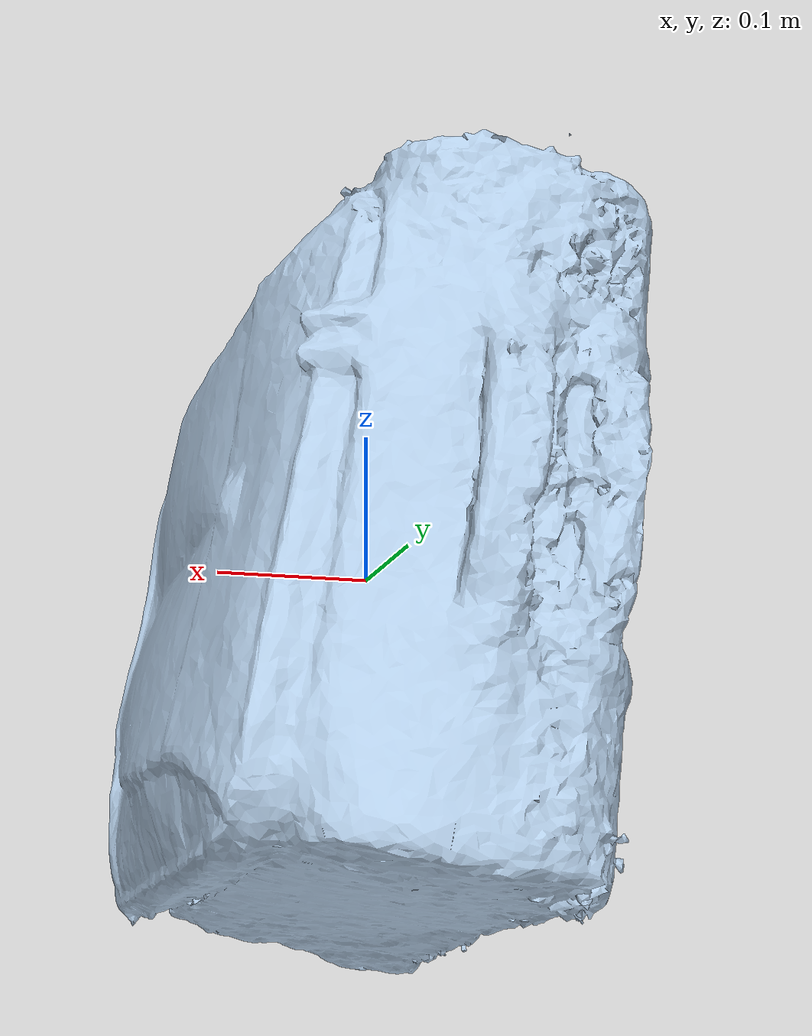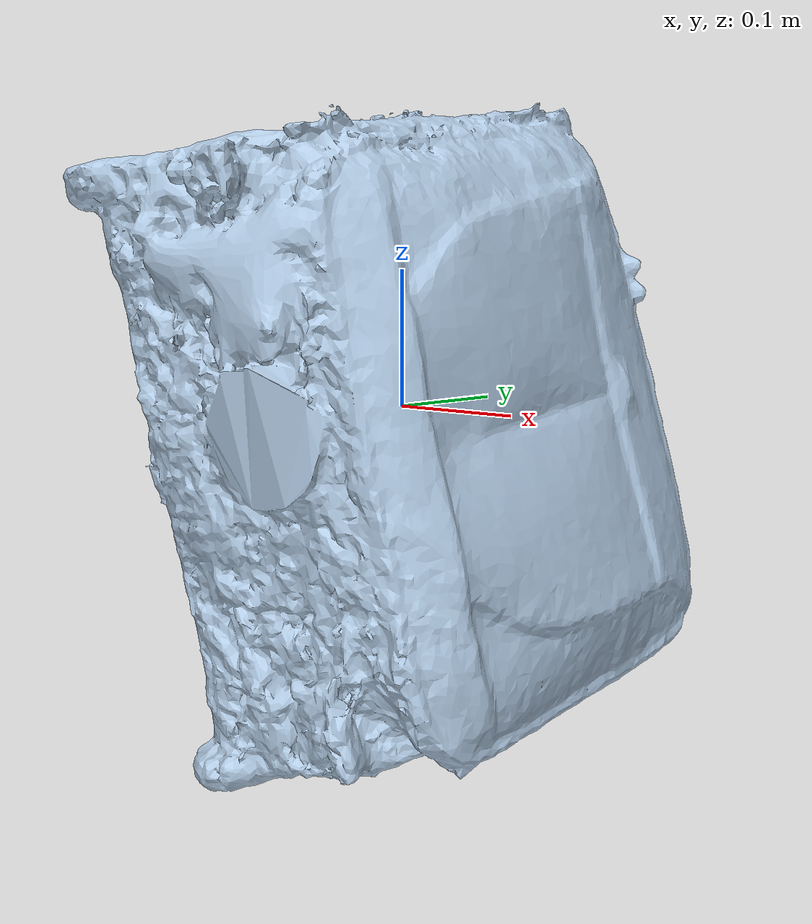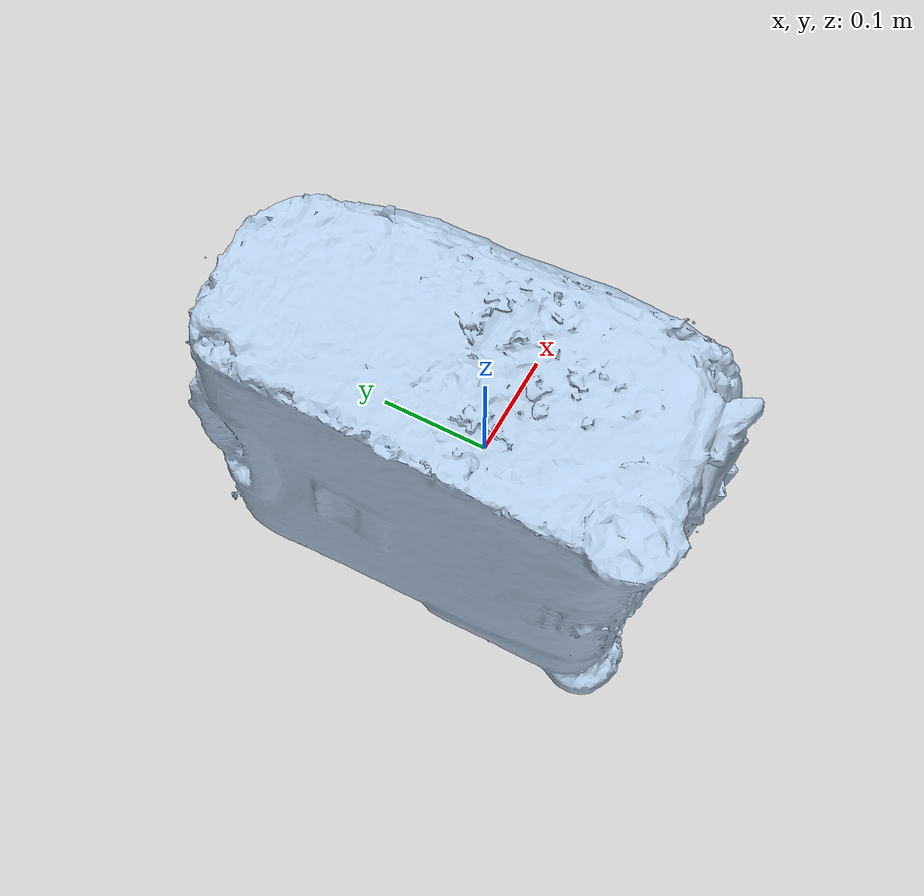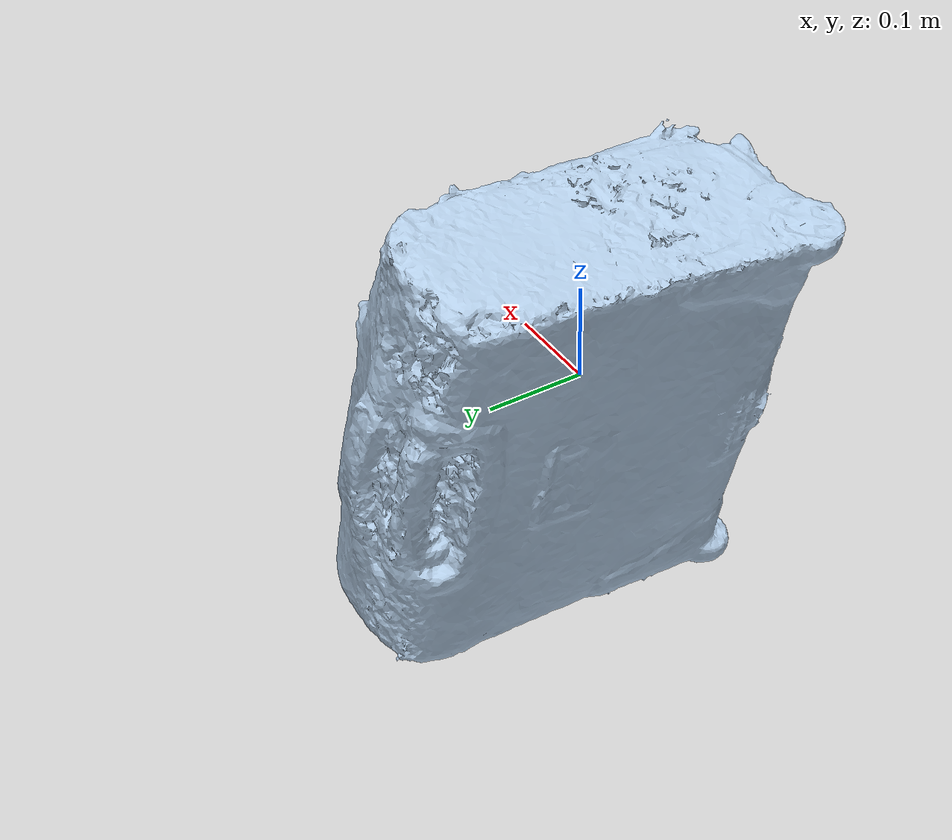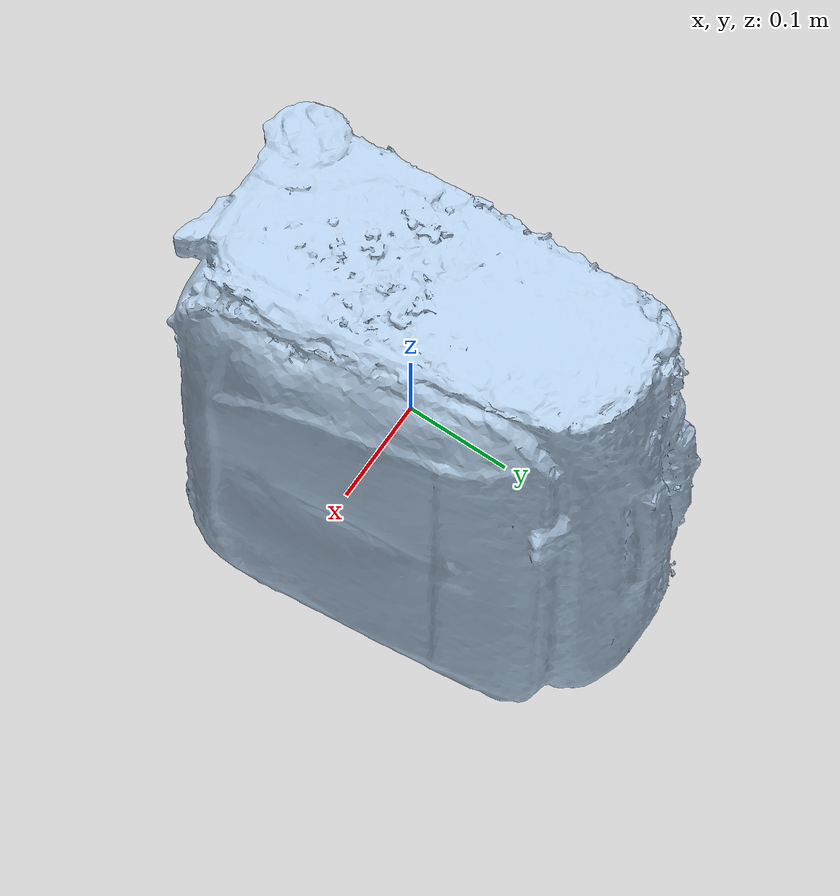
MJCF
<mujoco model="suitcase">
  <compiler angle="radian" coordinate="global"/>

  <asset>
    <mesh name="suitcase_mesh" file="objects/suitcase/suitcase.obj" scale="1 1 1"/>
    <material name="suitcase_mat" rgba="0.7 0.8 0.9 1"/>
  </asset>

  <default>
    <default class="suitcase_phys">
      <geom
        contype="1" conaffinity="1"
        friction="1.2 0.1 0.1"
        density="10"
        solimp="0.99 0.99 0.01"
        solref="0.01 1"
      />
    </default>
  </default>

  <worldbody>
    <body name="suitcase" pos="0 0 0.9" quat="1 0 0 0">
      <freejoint name="suitcase_free"/>

      <geom class="suitcase_phys"
            name="suitcase_geom"
            type="mesh" mesh="suitcase_mesh"
            material="suitcase_mat"/>
    </body>
  </worldbody>
</mujoco>
